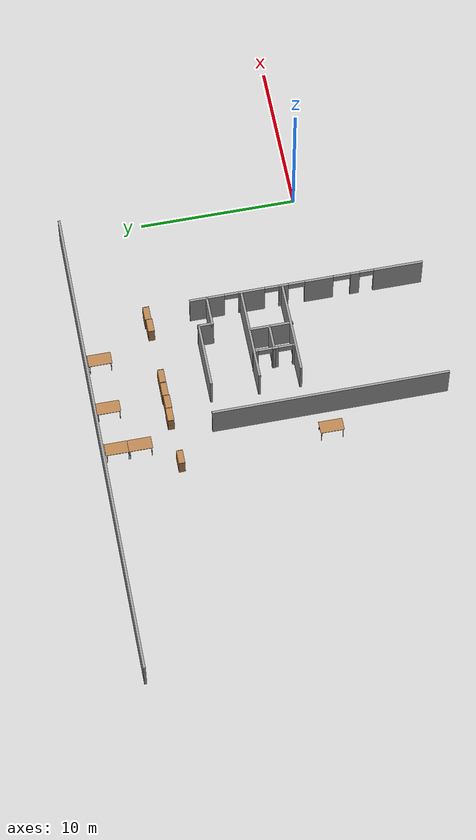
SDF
<sdf version="1.4">
 <world name="default">
  <model name="ground_plane">
   <static>1</static>
   <link name="link">
    <collision name="collision">
     <geometry><plane><normal>0 0 1</normal><size>100 100</size></plane></geometry>
    </collision>
    <visual name="visual">
     <cast_shadows>0</cast_shadows>
     <geometry><plane><normal>0 0 1</normal><size>100 100</size></plane></geometry>
     <material>
      <script><uri>file://media/materials/scripts/gazebo.material</uri><name>Gazebo/Grey</name></script>
     </material>
    </visual>
    <velocity_decay><linear>0</linear><angular>0</angular></velocity_decay>
   </link>
  </model>
  <model name="Shannon">
   <pose>-0.0406 0.68299 0 0 -0 0</pose>
   <link name="Wall_118">
    <collision name="Wall_118_Collision">
     <geometry><box><size>31.25 0.15 2.5</size></box></geometry>
     <pose>0 0 1.25 0 -0 0</pose>
    </collision>
    <visual name="Wall_118_Visual">
     <pose>0 0 1.25 0 -0 0</pose>
     <geometry><box><size>31.25 0.15 2.5</size></box></geometry>
     <material>
      <script><uri>file://media/materials/scripts/gazebo.material</uri><name>Gazebo/Grey</name></script>
      <ambient>1 1 1 1</ambient>
     </material>
    </visual>
    <pose>-15.6004 14.61 0 0 -0 0</pose>
    <velocity_decay><linear>0</linear><angular>0</angular></velocity_decay>
   </link>
   <link name="Wall_17">
    <collision name="Wall_17_Collision">
     <geometry><box><size>15 0.15 2.5</size></box></geometry>
     <pose>0 0 1.25 0 -0 0</pose>
    </collision>
    <visual name="Wall_17_Visual">
     <pose>0 0 1.25 0 -0 0</pose>
     <geometry><box><size>15 0.15 2.5</size></box></geometry>
     <material>
      <script><uri>file://media/materials/scripts/gazebo.material</uri><name>Gazebo/Grey</name></script>
      <ambient>1 1 1 1</ambient>
     </material>
    </visual>
    <pose>-15.3403 0.07086 0 0 -0 -1.569</pose>
    <velocity_decay><linear>0</linear><angular>0</angular></velocity_decay>
   </link>
   <link name="Wall_41">
    <collision name="Wall_41_Collision">
     <geometry><box><size>4.25 0.15 2.5</size></box></geometry>
     <pose>0 0 1.25 0 -0 0</pose>
    </collision>
    <visual name="Wall_41_Visual">
     <pose>0 0 1.25 0 -0 0</pose>
     <geometry><box><size>4.25 0.15 2.5</size></box></geometry>
     <material>
      <script><uri>file://media/materials/scripts/gazebo.material</uri><name>Gazebo/Grey</name></script>
      <ambient>1 1 1 1</ambient>
     </material>
    </visual>
    <pose>-11.2467 7.24934 0 0 -0 0</pose>
    <velocity_decay><linear>0</linear><angular>0</angular></velocity_decay>
   </link>
   <link name="Wall_42">
    <collision name="Wall_42_Collision">
     <geometry><box><size>1 0.15 2.5</size></box></geometry>
     <pose>0 0 1.25 0 -0 0</pose>
    </collision>
    <visual name="Wall_42_Visual">
     <pose>0 0 1.25 0 -0 0</pose>
     <geometry><box><size>1 0.15 2.5</size></box></geometry>
     <material>
      <script><uri>file://media/materials/scripts/gazebo.material</uri><name>Gazebo/Grey</name></script>
      <ambient>1 1 1 1</ambient>
     </material>
    </visual>
    <pose>-9.19666 6.82435 0 0 -0 -1.5708</pose>
    <velocity_decay><linear>0</linear><angular>0</angular></velocity_decay>
   </link>
   <link name="Wall_43">
    <collision name="Wall_43_Collision">
     <geometry><box><size>2 0.15 2.5</size></box></geometry>
     <pose>0 0 1.25 0 -0 0</pose>
    </collision>
    <visual name="Wall_43_Visual">
     <pose>0 0 1.25 0 -0 0</pose>
     <geometry><box><size>2 0.15 2.5</size></box></geometry>
     <material>
      <script><uri>file://media/materials/scripts/gazebo.material</uri><name>Gazebo/Grey</name></script>
      <ambient>1 1 1 1</ambient>
     </material>
    </visual>
    <pose>-8.27166 6.39934 0 0 -0 0</pose>
    <velocity_decay><linear>0</linear><angular>0</angular></velocity_decay>
   </link>
   <link name="Wall_47">
    <pose>-7.32897 0.009389 0 0 -0 -1.5708</pose>
    <visual name="Wall_47_Visual_0">
     <pose>-6.3818 0 1.25 0 -0 0</pose>
     <geometry><box><size>2.2364 0.15 2.5</size></box></geometry>
     <material>
      <script><uri>file://media/materials/scripts/gazebo.material</uri><name>Gazebo/Grey</name></script>
      <ambient>1 1 1 1</ambient>
     </material>
    </visual>
    <collision name="Wall_47_Collision_0">
     <geometry><box><size>2.2364 0.15 2.5</size></box></geometry>
     <pose>-6.3818 0 1.25 0 -0 0</pose>
    </collision>
    <visual name="Wall_47_Visual_1">
     <pose>-3.51711 0 1.25 0 -0 0</pose>
     <geometry><box><size>1.69298 0.15 2.5</size></box></geometry>
     <material>
      <script><uri>file://media/materials/scripts/gazebo.material</uri><name>Gazebo/Grey</name></script>
      <ambient>1 1 1 1</ambient>
     </material>
    </visual>
    <collision name="Wall_47_Collision_1">
     <geometry><box><size>1.69298 0.15 2.5</size></box></geometry>
     <pose>-3.51711 0 1.25 0 -0 0</pose>
    </collision>
    <visual name="Wall_47_Visual_2">
     <pose>-1.46309 0 1.25 0 -0 0</pose>
     <geometry><box><size>0.615055 0.15 2.5</size></box></geometry>
     <material>
      <script><uri>file://media/materials/scripts/gazebo.material</uri><name>Gazebo/Grey</name></script>
      <ambient>1 1 1 1</ambient>
     </material>
    </visual>
    <collision name="Wall_47_Collision_2">
     <geometry><box><size>0.615055 0.15 2.5</size></box></geometry>
     <pose>-1.46309 0 1.25 0 -0 0</pose>
    </collision>
    <visual name="Wall_47_Visual_3">
     <pose>0.809496 0 1.25 0 -0 0</pose>
     <geometry><box><size>1.85254 0.15 2.5</size></box></geometry>
     <material>
      <script><uri>file://media/materials/scripts/gazebo.material</uri><name>Gazebo/Grey</name></script>
      <ambient>1 1 1 1</ambient>
     </material>
    </visual>
    <collision name="Wall_47_Collision_3">
     <geometry><box><size>1.85254 0.15 2.5</size></box></geometry>
     <pose>0.809496 0 1.25 0 -0 0</pose>
    </collision>
    <visual name="Wall_47_Visual_4">
     <pose>3.13991 0 1.25 0 -0 0</pose>
     <geometry><box><size>0.591924 0.15 2.5</size></box></geometry>
     <material>
      <script><uri>file://media/materials/scripts/gazebo.material</uri><name>Gazebo/Grey</name></script>
      <ambient>1 1 1 1</ambient>
     </material>
    </visual>
    <collision name="Wall_47_Collision_4">
     <geometry><box><size>0.591924 0.15 2.5</size></box></geometry>
     <pose>3.13991 0 1.25 0 -0 0</pose>
    </collision>
    <visual name="Wall_47_Visual_5">
     <pose>5.91793 0 1.25 0 -0 0</pose>
     <geometry><box><size>3.16413 0.15 2.5</size></box></geometry>
     <material>
      <script><uri>file://media/materials/scripts/gazebo.material</uri><name>Gazebo/Grey</name></script>
      <ambient>1 1 1 1</ambient>
     </material>
    </visual>
    <collision name="Wall_47_Collision_5">
     <geometry><box><size>3.16413 0.15 2.5</size></box></geometry>
     <pose>5.91793 0 1.25 0 -0 0</pose>
    </collision>
    <visual name="Wall_47_Visual_6">
     <pose>-4.8136 0 2.25 0 -0 0</pose>
     <geometry><box><size>0.9 0.15 0.5</size></box></geometry>
     <material>
      <script><uri>file://media/materials/scripts/gazebo.material</uri><name>Gazebo/Grey</name></script>
      <ambient>1 1 1 1</ambient>
     </material>
    </visual>
    <collision name="Wall_47_Collision_6">
     <geometry><box><size>0.9 0.15 0.5</size></box></geometry>
     <pose>-4.8136 0 2.25 0 -0 0</pose>
    </collision>
    <visual name="Wall_47_Visual_7">
     <pose>-2.22061 0 2.25 0 -0 0</pose>
     <geometry><box><size>0.9 0.15 0.5</size></box></geometry>
     <material>
      <script><uri>file://media/materials/scripts/gazebo.material</uri><name>Gazebo/Grey</name></script>
      <ambient>1 1 1 1</ambient>
     </material>
    </visual>
    <collision name="Wall_47_Collision_7">
     <geometry><box><size>0.9 0.15 0.5</size></box></geometry>
     <pose>-2.22061 0 2.25 0 -0 0</pose>
    </collision>
    <visual name="Wall_47_Visual_8">
     <pose>-0.636167 0 2.25 0 -0 0</pose>
     <geometry><box><size>1.03878 0.15 0.5</size></box></geometry>
     <material>
      <script><uri>file://media/materials/scripts/gazebo.material</uri><name>Gazebo/Grey</name></script>
      <ambient>1 1 1 1</ambient>
     </material>
    </visual>
    <collision name="Wall_47_Collision_8">
     <geometry><box><size>1.03878 0.15 0.5</size></box></geometry>
     <pose>-0.636167 0 2.25 0 -0 0</pose>
    </collision>
    <visual name="Wall_47_Visual_9">
     <pose>2.28986 0 2.25 0 -0 0</pose>
     <geometry><box><size>1.10817 0.15 0.5</size></box></geometry>
     <material>
      <script><uri>file://media/materials/scripts/gazebo.material</uri><name>Gazebo/Grey</name></script>
      <ambient>1 1 1 1</ambient>
     </material>
    </visual>
    <collision name="Wall_47_Collision_9">
     <geometry><box><size>1.10817 0.15 0.5</size></box></geometry>
     <pose>2.28986 0 2.25 0 -0 0</pose>
    </collision>
    <visual name="Wall_47_Visual_10">
     <pose>3.88587 0 2.25 0 -0 0</pose>
     <geometry><box><size>0.9 0.15 0.5</size></box></geometry>
     <material>
      <script><uri>file://media/materials/scripts/gazebo.material</uri><name>Gazebo/Grey</name></script>
      <ambient>1 1 1 1</ambient>
     </material>
    </visual>
    <collision name="Wall_47_Collision_10">
     <geometry><box><size>0.9 0.15 0.5</size></box></geometry>
     <pose>3.88587 0 2.25 0 -0 0</pose>
    </collision>
    <velocity_decay><linear>0</linear><angular>0</angular></velocity_decay>
   </link>
   <link name="Wall_49">
    <collision name="Wall_49_Collision">
     <geometry><box><size>6 0.15 2.5</size></box></geometry>
     <pose>0 0 1.25 0 -0 0</pose>
    </collision>
    <visual name="Wall_49_Visual">
     <pose>0 0 1.25 0 -0 0</pose>
     <geometry><box><size>6 0.15 2.5</size></box></geometry>
     <material>
      <script><uri>file://media/materials/scripts/gazebo.material</uri><name>Gazebo/Grey</name></script>
      <ambient>1 1 1 1</ambient>
     </material>
    </visual>
    <pose>-10.3948 4.1961 0 0 -0 0</pose>
    <velocity_decay><linear>0</linear><angular>0</angular></velocity_decay>
   </link>
   <link name="Wall_51">
    <collision name="Wall_51_Collision">
     <geometry><box><size>6 0.15 2.5</size></box></geometry>
     <pose>0 0 1.25 0 -0 0</pose>
    </collision>
    <visual name="Wall_51_Visual">
     <pose>0 0 1.25 0 -0 0</pose>
     <geometry><box><size>6 0.15 2.5</size></box></geometry>
     <material>
      <script><uri>file://media/materials/scripts/gazebo.material</uri><name>Gazebo/Grey</name></script>
      <ambient>1 1 1 1</ambient>
     </material>
    </visual>
    <pose>-10.3717 1.55922 0 0 -0 0</pose>
    <velocity_decay><linear>0</linear><angular>0</angular></velocity_decay>
   </link>
   <link name="Wall_67">
    <pose>-11.6313 2.91924 0 0 -0 -1.5708</pose>
    <visual name="Wall_67_Visual_0">
     <pose>-1.20398 0 1.25 0 -0 0</pose>
     <geometry><box><size>0.342049 0.15 2.5</size></box></geometry>
     <material>
      <script><uri>file://media/materials/scripts/gazebo.material</uri><name>Gazebo/Grey</name></script>
      <ambient>1 1 1 1</ambient>
     </material>
    </visual>
    <collision name="Wall_67_Collision_0">
     <geometry><box><size>0.342049 0.15 2.5</size></box></geometry>
     <pose>-1.20398 0 1.25 0 -0 0</pose>
    </collision>
    <visual name="Wall_67_Visual_1">
     <pose>0.064706 0 1.25 0 -0 0</pose>
     <geometry><box><size>0.395314 0.15 2.5</size></box></geometry>
     <material>
      <script><uri>file://media/materials/scripts/gazebo.material</uri><name>Gazebo/Grey</name></script>
      <ambient>1 1 1 1</ambient>
     </material>
    </visual>
    <collision name="Wall_67_Collision_1">
     <geometry><box><size>0.395314 0.15 2.5</size></box></geometry>
     <pose>0.064706 0 1.25 0 -0 0</pose>
    </collision>
    <visual name="Wall_67_Visual_2">
     <pose>1.26868 0 1.25 0 -0 0</pose>
     <geometry><box><size>0.212637 0.15 2.5</size></box></geometry>
     <material>
      <script><uri>file://media/materials/scripts/gazebo.material</uri><name>Gazebo/Grey</name></script>
      <ambient>1 1 1 1</ambient>
     </material>
    </visual>
    <collision name="Wall_67_Collision_2">
     <geometry><box><size>0.212637 0.15 2.5</size></box></geometry>
     <pose>1.26868 0 1.25 0 -0 0</pose>
    </collision>
    <visual name="Wall_67_Visual_3">
     <pose>-0.582951 0 2.25 0 -0 0</pose>
     <geometry><box><size>0.9 0.15 0.5</size></box></geometry>
     <material>
      <script><uri>file://media/materials/scripts/gazebo.material</uri><name>Gazebo/Grey</name></script>
      <ambient>1 1 1 1</ambient>
     </material>
    </visual>
    <collision name="Wall_67_Collision_3">
     <geometry><box><size>0.9 0.15 0.5</size></box></geometry>
     <pose>-0.582951 0 2.25 0 -0 0</pose>
    </collision>
    <visual name="Wall_67_Visual_4">
     <pose>0.712363 0 2.25 0 -0 0</pose>
     <geometry><box><size>0.9 0.15 0.5</size></box></geometry>
     <material>
      <script><uri>file://media/materials/scripts/gazebo.material</uri><name>Gazebo/Grey</name></script>
      <ambient>1 1 1 1</ambient>
     </material>
    </visual>
    <collision name="Wall_67_Collision_4">
     <geometry><box><size>0.9 0.15 0.5</size></box></geometry>
     <pose>0.712363 0 2.25 0 -0 0</pose>
    </collision>
    <velocity_decay><linear>0</linear><angular>0</angular></velocity_decay>
   </link>
   <link name="Wall_69">
    <collision name="Wall_69_Collision">
     <geometry><box><size>1.75 0.15 2.5</size></box></geometry>
     <pose>0 0 1.25 0 -0 0</pose>
    </collision>
    <visual name="Wall_69_Visual">
     <pose>0 0 1.25 0 -0 0</pose>
     <geometry><box><size>1.75 0.15 2.5</size></box></geometry>
     <material>
      <script><uri>file://media/materials/scripts/gazebo.material</uri><name>Gazebo/Grey</name></script>
      <ambient>1 1 1 1</ambient>
     </material>
    </visual>
    <pose>-10.8544 2.92392 0 0 -0 0</pose>
    <velocity_decay><linear>0</linear><angular>0</angular></velocity_decay>
   </link>
   <link name="Wall_71">
    <collision name="Wall_71_Collision">
     <geometry><box><size>2.75 0.15 2.5</size></box></geometry>
     <pose>0 0 1.25 0 -0 0</pose>
    </collision>
    <visual name="Wall_71_Visual">
     <pose>0 0 1.25 0 -0 0</pose>
     <geometry><box><size>2.75 0.15 2.5</size></box></geometry>
     <material>
      <script><uri>file://media/materials/scripts/gazebo.material</uri><name>Gazebo/Grey</name></script>
      <ambient>1 1 1 1</ambient>
     </material>
    </visual>
    <pose>-10.0584 2.80358 0 0 -0 -1.5708</pose>
    <velocity_decay><linear>0</linear><angular>0</angular></velocity_decay>
   </link>
   <static>1</static>
  </model>
  <model name="table_clone_clone_3">
   <static>1</static>
   <link name="link">
    <collision name="surface">
     <pose>0 0 1 0 -0 0</pose>
     <geometry><box><size>1.5 0.8 0.03</size></box></geometry>
    </collision>
    <visual name="visual1">
     <pose>0 0 1 0 -0 0</pose>
     <geometry><box><size>1.5 0.8 0.03</size></box></geometry>
     <material>
      <script><uri>file://media/materials/scripts/gazebo.material</uri><name>Gazebo/Wood</name></script>
     </material>
    </visual>
    <collision name="front_left_leg">
     <pose>0.68 0.38 0.5 0 -0 0</pose>
     <geometry><cylinder><radius>0.02</radius><length>1</length></cylinder></geometry>
    </collision>
    <visual name="front_left_leg">
     <pose>0.68 0.38 0.5 0 -0 0</pose>
     <geometry><cylinder><radius>0.02</radius><length>1</length></cylinder></geometry>
     <material>
      <script><uri>file://media/materials/scripts/gazebo.material</uri><name>Gazebo/Grey</name></script>
     </material>
    </visual>
    <collision name="front_right_leg">
     <pose>0.68 -0.38 0.5 0 -0 0</pose>
     <geometry><cylinder><radius>0.02</radius><length>1</length></cylinder></geometry>
    </collision>
    <visual name="front_right_leg">
     <pose>0.68 -0.38 0.5 0 -0 0</pose>
     <geometry><cylinder><radius>0.02</radius><length>1</length></cylinder></geometry>
     <material>
      <script><uri>file://media/materials/scripts/gazebo.material</uri><name>Gazebo/Grey</name></script>
     </material>
    </visual>
    <collision name="back_right_leg">
     <pose>-0.68 -0.38 0.5 0 -0 0</pose>
     <geometry><cylinder><radius>0.02</radius><length>1</length></cylinder></geometry>
    </collision>
    <visual name="back_right_leg">
     <pose>-0.68 -0.38 0.5 0 -0 0</pose>
     <geometry><cylinder><radius>0.02</radius><length>1</length></cylinder></geometry>
     <material>
      <script><uri>file://media/materials/scripts/gazebo.material</uri><name>Gazebo/Grey</name></script>
     </material>
    </visual>
    <collision name="back_left_leg">
     <pose>-0.68 0.38 0.5 0 -0 0</pose>
     <geometry><cylinder><radius>0.02</radius><length>1</length></cylinder></geometry>
    </collision>
    <visual name="back_left_leg">
     <pose>-0.68 0.38 0.5 0 -0 0</pose>
     <geometry><cylinder><radius>0.02</radius><length>1</length></cylinder></geometry>
     <material>
      <script><uri>file://media/materials/scripts/gazebo.material</uri><name>Gazebo/Grey</name></script>
     </material>
    </visual>
    <velocity_decay><linear>0</linear><angular>0</angular></velocity_decay>
   </link>
   <pose>-9.61769 14.3695 0 0 -0 1.57</pose>
  </model>
  <model name="table_clone_clone_5">
   <static>1</static>
   <link name="link">
    <collision name="surface">
     <pose>0 0 1 0 -0 0</pose>
     <geometry><box><size>1.5 0.8 0.03</size></box></geometry>
    </collision>
    <visual name="visual1">
     <pose>0 0 1 0 -0 0</pose>
     <geometry><box><size>1.5 0.8 0.03</size></box></geometry>
     <material>
      <script><uri>file://media/materials/scripts/gazebo.material</uri><name>Gazebo/Wood</name></script>
     </material>
    </visual>
    <collision name="front_left_leg">
     <pose>0.68 0.38 0.5 0 -0 0</pose>
     <geometry><cylinder><radius>0.02</radius><length>1</length></cylinder></geometry>
    </collision>
    <visual name="front_left_leg">
     <pose>0.68 0.38 0.5 0 -0 0</pose>
     <geometry><cylinder><radius>0.02</radius><length>1</length></cylinder></geometry>
     <material>
      <script><uri>file://media/materials/scripts/gazebo.material</uri><name>Gazebo/Grey</name></script>
     </material>
    </visual>
    <collision name="front_right_leg">
     <pose>0.68 -0.38 0.5 0 -0 0</pose>
     <geometry><cylinder><radius>0.02</radius><length>1</length></cylinder></geometry>
    </collision>
    <visual name="front_right_leg">
     <pose>0.68 -0.38 0.5 0 -0 0</pose>
     <geometry><cylinder><radius>0.02</radius><length>1</length></cylinder></geometry>
     <material>
      <script><uri>file://media/materials/scripts/gazebo.material</uri><name>Gazebo/Grey</name></script>
     </material>
    </visual>
    <collision name="back_right_leg">
     <pose>-0.68 -0.38 0.5 0 -0 0</pose>
     <geometry><cylinder><radius>0.02</radius><length>1</length></cylinder></geometry>
    </collision>
    <visual name="back_right_leg">
     <pose>-0.68 -0.38 0.5 0 -0 0</pose>
     <geometry><cylinder><radius>0.02</radius><length>1</length></cylinder></geometry>
     <material>
      <script><uri>file://media/materials/scripts/gazebo.material</uri><name>Gazebo/Grey</name></script>
     </material>
    </visual>
    <collision name="back_left_leg">
     <pose>-0.68 0.38 0.5 0 -0 0</pose>
     <geometry><cylinder><radius>0.02</radius><length>1</length></cylinder></geometry>
    </collision>
    <visual name="back_left_leg">
     <pose>-0.68 0.38 0.5 0 -0 0</pose>
     <geometry><cylinder><radius>0.02</radius><length>1</length></cylinder></geometry>
     <material>
      <script><uri>file://media/materials/scripts/gazebo.material</uri><name>Gazebo/Grey</name></script>
     </material>
    </visual>
    <velocity_decay><linear>0</linear><angular>0</angular></velocity_decay>
   </link>
   <pose>-13.0647 14.4109 0 0 -0 1.57</pose>
  </model>
  <model name="table_clone_clone_7">
   <static>1</static>
   <link name="link">
    <collision name="surface">
     <pose>0 0 1 0 -0 0</pose>
     <geometry><box><size>1.5 0.8 0.03</size></box></geometry>
    </collision>
    <visual name="visual1">
     <pose>0 0 1 0 -0 0</pose>
     <geometry><box><size>1.5 0.8 0.03</size></box></geometry>
     <material>
      <script><uri>file://media/materials/scripts/gazebo.material</uri><name>Gazebo/Wood</name></script>
     </material>
    </visual>
    <collision name="front_left_leg">
     <pose>0.68 0.38 0.5 0 -0 0</pose>
     <geometry><cylinder><radius>0.02</radius><length>1</length></cylinder></geometry>
    </collision>
    <visual name="front_left_leg">
     <pose>0.68 0.38 0.5 0 -0 0</pose>
     <geometry><cylinder><radius>0.02</radius><length>1</length></cylinder></geometry>
     <material>
      <script><uri>file://media/materials/scripts/gazebo.material</uri><name>Gazebo/Grey</name></script>
     </material>
    </visual>
    <collision name="front_right_leg">
     <pose>0.68 -0.38 0.5 0 -0 0</pose>
     <geometry><cylinder><radius>0.02</radius><length>1</length></cylinder></geometry>
    </collision>
    <visual name="front_right_leg">
     <pose>0.68 -0.38 0.5 0 -0 0</pose>
     <geometry><cylinder><radius>0.02</radius><length>1</length></cylinder></geometry>
     <material>
      <script><uri>file://media/materials/scripts/gazebo.material</uri><name>Gazebo/Grey</name></script>
     </material>
    </visual>
    <collision name="back_right_leg">
     <pose>-0.68 -0.38 0.5 0 -0 0</pose>
     <geometry><cylinder><radius>0.02</radius><length>1</length></cylinder></geometry>
    </collision>
    <visual name="back_right_leg">
     <pose>-0.68 -0.38 0.5 0 -0 0</pose>
     <geometry><cylinder><radius>0.02</radius><length>1</length></cylinder></geometry>
     <material>
      <script><uri>file://media/materials/scripts/gazebo.material</uri><name>Gazebo/Grey</name></script>
     </material>
    </visual>
    <collision name="back_left_leg">
     <pose>-0.68 0.38 0.5 0 -0 0</pose>
     <geometry><cylinder><radius>0.02</radius><length>1</length></cylinder></geometry>
    </collision>
    <visual name="back_left_leg">
     <pose>-0.68 0.38 0.5 0 -0 0</pose>
     <geometry><cylinder><radius>0.02</radius><length>1</length></cylinder></geometry>
     <material>
      <script><uri>file://media/materials/scripts/gazebo.material</uri><name>Gazebo/Grey</name></script>
     </material>
    </visual>
    <velocity_decay><linear>0</linear><angular>0</angular></velocity_decay>
   </link>
   <pose>-15.9528 12.9118 0 0 -0 1.57</pose>
  </model>
  <model name="table_clone_clone_8">
   <static>1</static>
   <link name="link">
    <collision name="surface">
     <pose>0 0 1 0 -0 0</pose>
     <geometry><box><size>1.5 0.8 0.03</size></box></geometry>
    </collision>
    <visual name="visual1">
     <pose>0 0 1 0 -0 0</pose>
     <geometry><box><size>1.5 0.8 0.03</size></box></geometry>
     <material>
      <script><uri>file://media/materials/scripts/gazebo.material</uri><name>Gazebo/Wood</name></script>
     </material>
    </visual>
    <collision name="front_left_leg">
     <pose>0.68 0.38 0.5 0 -0 0</pose>
     <geometry><cylinder><radius>0.02</radius><length>1</length></cylinder></geometry>
    </collision>
    <visual name="front_left_leg">
     <pose>0.68 0.38 0.5 0 -0 0</pose>
     <geometry><cylinder><radius>0.02</radius><length>1</length></cylinder></geometry>
     <material>
      <script><uri>file://media/materials/scripts/gazebo.material</uri><name>Gazebo/Grey</name></script>
     </material>
    </visual>
    <collision name="front_right_leg">
     <pose>0.68 -0.38 0.5 0 -0 0</pose>
     <geometry><cylinder><radius>0.02</radius><length>1</length></cylinder></geometry>
    </collision>
    <visual name="front_right_leg">
     <pose>0.68 -0.38 0.5 0 -0 0</pose>
     <geometry><cylinder><radius>0.02</radius><length>1</length></cylinder></geometry>
     <material>
      <script><uri>file://media/materials/scripts/gazebo.material</uri><name>Gazebo/Grey</name></script>
     </material>
    </visual>
    <collision name="back_right_leg">
     <pose>-0.68 -0.38 0.5 0 -0 0</pose>
     <geometry><cylinder><radius>0.02</radius><length>1</length></cylinder></geometry>
    </collision>
    <visual name="back_right_leg">
     <pose>-0.68 -0.38 0.5 0 -0 0</pose>
     <geometry><cylinder><radius>0.02</radius><length>1</length></cylinder></geometry>
     <material>
      <script><uri>file://media/materials/scripts/gazebo.material</uri><name>Gazebo/Grey</name></script>
     </material>
    </visual>
    <collision name="back_left_leg">
     <pose>-0.68 0.38 0.5 0 -0 0</pose>
     <geometry><cylinder><radius>0.02</radius><length>1</length></cylinder></geometry>
    </collision>
    <visual name="back_left_leg">
     <pose>-0.68 0.38 0.5 0 -0 0</pose>
     <geometry><cylinder><radius>0.02</radius><length>1</length></cylinder></geometry>
     <material>
      <script><uri>file://media/materials/scripts/gazebo.material</uri><name>Gazebo/Grey</name></script>
     </material>
    </visual>
    <velocity_decay><linear>0</linear><angular>0</angular></velocity_decay>
   </link>
   <pose>-15.9532 14.3573 0 0 -0 1.57</pose>
  </model>
  <model name="table_clone_clone_2_clone">
   <static>1</static>
   <link name="link">
    <collision name="surface">
     <pose>0 0 1 0 -0 0</pose>
     <geometry><box><size>1.5 0.8 0.03</size></box></geometry>
    </collision>
    <visual name="visual1">
     <pose>0 0 1 0 -0 0</pose>
     <geometry><box><size>1.5 0.8 0.03</size></box></geometry>
     <material>
      <script><uri>file://media/materials/scripts/gazebo.material</uri><name>Gazebo/Wood</name></script>
     </material>
    </visual>
    <collision name="front_left_leg">
     <pose>0.68 0.38 0.5 0 -0 0</pose>
     <geometry><cylinder><radius>0.02</radius><length>1</length></cylinder></geometry>
    </collision>
    <visual name="front_left_leg">
     <pose>0.68 0.38 0.5 0 -0 0</pose>
     <geometry><cylinder><radius>0.02</radius><length>1</length></cylinder></geometry>
     <material>
      <script><uri>file://media/materials/scripts/gazebo.material</uri><name>Gazebo/Grey</name></script>
     </material>
    </visual>
    <collision name="front_right_leg">
     <pose>0.68 -0.38 0.5 0 -0 0</pose>
     <geometry><cylinder><radius>0.02</radius><length>1</length></cylinder></geometry>
    </collision>
    <visual name="front_right_leg">
     <pose>0.68 -0.38 0.5 0 -0 0</pose>
     <geometry><cylinder><radius>0.02</radius><length>1</length></cylinder></geometry>
     <material>
      <script><uri>file://media/materials/scripts/gazebo.material</uri><name>Gazebo/Grey</name></script>
     </material>
    </visual>
    <collision name="back_right_leg">
     <pose>-0.68 -0.38 0.5 0 -0 0</pose>
     <geometry><cylinder><radius>0.02</radius><length>1</length></cylinder></geometry>
    </collision>
    <visual name="back_right_leg">
     <pose>-0.68 -0.38 0.5 0 -0 0</pose>
     <geometry><cylinder><radius>0.02</radius><length>1</length></cylinder></geometry>
     <material>
      <script><uri>file://media/materials/scripts/gazebo.material</uri><name>Gazebo/Grey</name></script>
     </material>
    </visual>
    <collision name="back_left_leg">
     <pose>-0.68 0.38 0.5 0 -0 0</pose>
     <geometry><cylinder><radius>0.02</radius><length>1</length></cylinder></geometry>
    </collision>
    <visual name="back_left_leg">
     <pose>-0.68 0.38 0.5 0 -0 0</pose>
     <geometry><cylinder><radius>0.02</radius><length>1</length></cylinder></geometry>
     <material>
      <script><uri>file://media/materials/scripts/gazebo.material</uri><name>Gazebo/Grey</name></script>
     </material>
    </visual>
    <velocity_decay><linear>0</linear><angular>0</angular></velocity_decay>
   </link>
   <pose>-16.9544 1.03721 0 0 -0 1.57</pose>
  </model>
  <model name="bookshelf_2">
   <static>1</static>
   <link name="link">
    <inertial><mass>1</mass></inertial>
    <collision name="back">
     <pose>0 0.005 0.6 0 -0 0</pose>
     <geometry><box><size>0.9 0.01 1.2</size></box></geometry>
    </collision>
    <visual name="visual1">
     <pose>0 0.005 0.6 0 -0 0</pose>
     <geometry><box><size>0.9 0.01 1.2</size></box></geometry>
     <material>
      <script><uri>file://media/materials/scripts/gazebo.material</uri><name>Gazebo/Wood</name></script>
     </material>
    </visual>
    <collision name="left_side">
     <pose>0.45 -0.195 0.6 0 -0 0</pose>
     <geometry><box><size>0.02 0.4 1.2</size></box></geometry>
    </collision>
    <visual name="visual2">
     <pose>0.45 -0.195 0.6 0 -0 0</pose>
     <geometry><box><size>0.02 0.4 1.2</size></box></geometry>
     <material>
      <script><uri>file://media/materials/scripts/gazebo.material</uri><name>Gazebo/Wood</name></script>
     </material>
    </visual>
    <collision name="right_side">
     <pose>-0.45 -0.195 0.6 0 -0 0</pose>
     <geometry><box><size>0.02 0.4 1.2</size></box></geometry>
    </collision>
    <visual name="visual3">
     <pose>-0.45 -0.195 0.6 0 -0 0</pose>
     <geometry><box><size>0.02 0.4 1.2</size></box></geometry>
     <material>
      <script><uri>file://media/materials/scripts/gazebo.material</uri><name>Gazebo/Wood</name></script>
     </material>
    </visual>
    <collision name="bottom">
     <pose>0 -0.195 0.03 0 -0 0</pose>
     <geometry><box><size>0.88 0.4 0.06</size></box></geometry>
    </collision>
    <visual name="visual4">
     <pose>0 -0.195 0.03 0 -0 0</pose>
     <geometry><box><size>0.88 0.4 0.06</size></box></geometry>
     <material>
      <script><uri>file://media/materials/scripts/gazebo.material</uri><name>Gazebo/Wood</name></script>
     </material>
    </visual>
    <collision name="top">
     <pose>0 -0.195 1.19 0 -0 0</pose>
     <geometry><box><size>0.88 0.4 0.02</size></box></geometry>
    </collision>
    <visual name="visual5">
     <pose>0 -0.195 1.19 0 -0 0</pose>
     <geometry><box><size>0.88 0.4 0.02</size></box></geometry>
     <material>
      <script><uri>file://media/materials/scripts/gazebo.material</uri><name>Gazebo/Wood</name></script>
     </material>
    </visual>
    <collision name="low_shelf">
     <pose>0 -0.195 0.43 0 -0 0</pose>
     <geometry><box><size>0.88 0.4 0.02</size></box></geometry>
    </collision>
    <visual name="visual6">
     <pose>0 -0.195 0.43 0 -0 0</pose>
     <geometry><box><size>0.88 0.4 0.02</size></box></geometry>
     <material>
      <script><uri>file://media/materials/scripts/gazebo.material</uri><name>Gazebo/Wood</name></script>
     </material>
    </visual>
    <collision name="high_shelf">
     <pose>0 -0.195 0.8 0 -0 0</pose>
     <geometry><box><size>0.88 0.4 0.02</size></box></geometry>
    </collision>
    <visual name="visual7">
     <pose>0 -0.195 0.8 0 -0 0</pose>
     <geometry><box><size>0.88 0.4 0.02</size></box></geometry>
     <material>
      <script><uri>file://media/materials/scripts/gazebo.material</uri><name>Gazebo/Wood</name></script>
     </material>
    </visual>
    <velocity_decay><linear>0</linear><angular>0</angular></velocity_decay>
   </link>
   <pose>-17.3752 10.8036 0 0 -0 0</pose>
  </model>
  <model name="bookshelf_3">
   <static>1</static>
   <link name="link">
    <inertial><mass>1</mass></inertial>
    <collision name="back">
     <pose>0 0.005 0.6 0 -0 0</pose>
     <geometry><box><size>0.9 0.01 1.2</size></box></geometry>
    </collision>
    <visual name="visual1">
     <pose>0 0.005 0.6 0 -0 0</pose>
     <geometry><box><size>0.9 0.01 1.2</size></box></geometry>
     <material>
      <script><uri>file://media/materials/scripts/gazebo.material</uri><name>Gazebo/Wood</name></script>
     </material>
    </visual>
    <collision name="left_side">
     <pose>0.45 -0.195 0.6 0 -0 0</pose>
     <geometry><box><size>0.02 0.4 1.2</size></box></geometry>
    </collision>
    <visual name="visual2">
     <pose>0.45 -0.195 0.6 0 -0 0</pose>
     <geometry><box><size>0.02 0.4 1.2</size></box></geometry>
     <material>
      <script><uri>file://media/materials/scripts/gazebo.material</uri><name>Gazebo/Wood</name></script>
     </material>
    </visual>
    <collision name="right_side">
     <pose>-0.45 -0.195 0.6 0 -0 0</pose>
     <geometry><box><size>0.02 0.4 1.2</size></box></geometry>
    </collision>
    <visual name="visual3">
     <pose>-0.45 -0.195 0.6 0 -0 0</pose>
     <geometry><box><size>0.02 0.4 1.2</size></box></geometry>
     <material>
      <script><uri>file://media/materials/scripts/gazebo.material</uri><name>Gazebo/Wood</name></script>
     </material>
    </visual>
    <collision name="bottom">
     <pose>0 -0.195 0.03 0 -0 0</pose>
     <geometry><box><size>0.88 0.4 0.06</size></box></geometry>
    </collision>
    <visual name="visual4">
     <pose>0 -0.195 0.03 0 -0 0</pose>
     <geometry><box><size>0.88 0.4 0.06</size></box></geometry>
     <material>
      <script><uri>file://media/materials/scripts/gazebo.material</uri><name>Gazebo/Wood</name></script>
     </material>
    </visual>
    <collision name="top">
     <pose>0 -0.195 1.19 0 -0 0</pose>
     <geometry><box><size>0.88 0.4 0.02</size></box></geometry>
    </collision>
    <visual name="visual5">
     <pose>0 -0.195 1.19 0 -0 0</pose>
     <geometry><box><size>0.88 0.4 0.02</size></box></geometry>
     <material>
      <script><uri>file://media/materials/scripts/gazebo.material</uri><name>Gazebo/Wood</name></script>
     </material>
    </visual>
    <collision name="low_shelf">
     <pose>0 -0.195 0.43 0 -0 0</pose>
     <geometry><box><size>0.88 0.4 0.02</size></box></geometry>
    </collision>
    <visual name="visual6">
     <pose>0 -0.195 0.43 0 -0 0</pose>
     <geometry><box><size>0.88 0.4 0.02</size></box></geometry>
     <material>
      <script><uri>file://media/materials/scripts/gazebo.material</uri><name>Gazebo/Wood</name></script>
     </material>
    </visual>
    <collision name="high_shelf">
     <pose>0 -0.195 0.8 0 -0 0</pose>
     <geometry><box><size>0.88 0.4 0.02</size></box></geometry>
    </collision>
    <visual name="visual7">
     <pose>0 -0.195 0.8 0 -0 0</pose>
     <geometry><box><size>0.88 0.4 0.02</size></box></geometry>
     <material>
      <script><uri>file://media/materials/scripts/gazebo.material</uri><name>Gazebo/Wood</name></script>
     </material>
    </visual>
    <velocity_decay><linear>0</linear><angular>0</angular></velocity_decay>
   </link>
   <pose>-14.3513 10.9343 0 0 -0 0</pose>
  </model>
  <model name="bookshelf_4">
   <static>1</static>
   <link name="link">
    <inertial><mass>1</mass></inertial>
    <collision name="back">
     <pose>0 0.005 0.6 0 -0 0</pose>
     <geometry><box><size>0.9 0.01 1.2</size></box></geometry>
    </collision>
    <visual name="visual1">
     <pose>0 0.005 0.6 0 -0 0</pose>
     <geometry><box><size>0.9 0.01 1.2</size></box></geometry>
     <material>
      <script><uri>file://media/materials/scripts/gazebo.material</uri><name>Gazebo/Wood</name></script>
     </material>
    </visual>
    <collision name="left_side">
     <pose>0.45 -0.195 0.6 0 -0 0</pose>
     <geometry><box><size>0.02 0.4 1.2</size></box></geometry>
    </collision>
    <visual name="visual2">
     <pose>0.45 -0.195 0.6 0 -0 0</pose>
     <geometry><box><size>0.02 0.4 1.2</size></box></geometry>
     <material>
      <script><uri>file://media/materials/scripts/gazebo.material</uri><name>Gazebo/Wood</name></script>
     </material>
    </visual>
    <collision name="right_side">
     <pose>-0.45 -0.195 0.6 0 -0 0</pose>
     <geometry><box><size>0.02 0.4 1.2</size></box></geometry>
    </collision>
    <visual name="visual3">
     <pose>-0.45 -0.195 0.6 0 -0 0</pose>
     <geometry><box><size>0.02 0.4 1.2</size></box></geometry>
     <material>
      <script><uri>file://media/materials/scripts/gazebo.material</uri><name>Gazebo/Wood</name></script>
     </material>
    </visual>
    <collision name="bottom">
     <pose>0 -0.195 0.03 0 -0 0</pose>
     <geometry><box><size>0.88 0.4 0.06</size></box></geometry>
    </collision>
    <visual name="visual4">
     <pose>0 -0.195 0.03 0 -0 0</pose>
     <geometry><box><size>0.88 0.4 0.06</size></box></geometry>
     <material>
      <script><uri>file://media/materials/scripts/gazebo.material</uri><name>Gazebo/Wood</name></script>
     </material>
    </visual>
    <collision name="top">
     <pose>0 -0.195 1.19 0 -0 0</pose>
     <geometry><box><size>0.88 0.4 0.02</size></box></geometry>
    </collision>
    <visual name="visual5">
     <pose>0 -0.195 1.19 0 -0 0</pose>
     <geometry><box><size>0.88 0.4 0.02</size></box></geometry>
     <material>
      <script><uri>file://media/materials/scripts/gazebo.material</uri><name>Gazebo/Wood</name></script>
     </material>
    </visual>
    <collision name="low_shelf">
     <pose>0 -0.195 0.43 0 -0 0</pose>
     <geometry><box><size>0.88 0.4 0.02</size></box></geometry>
    </collision>
    <visual name="visual6">
     <pose>0 -0.195 0.43 0 -0 0</pose>
     <geometry><box><size>0.88 0.4 0.02</size></box></geometry>
     <material>
      <script><uri>file://media/materials/scripts/gazebo.material</uri><name>Gazebo/Wood</name></script>
     </material>
    </visual>
    <collision name="high_shelf">
     <pose>0 -0.195 0.8 0 -0 0</pose>
     <geometry><box><size>0.88 0.4 0.02</size></box></geometry>
    </collision>
    <visual name="visual7">
     <pose>0 -0.195 0.8 0 -0 0</pose>
     <geometry><box><size>0.88 0.4 0.02</size></box></geometry>
     <material>
      <script><uri>file://media/materials/scripts/gazebo.material</uri><name>Gazebo/Wood</name></script>
     </material>
    </visual>
    <velocity_decay><linear>0</linear><angular>0</angular></velocity_decay>
   </link>
   <pose>-13.4463 10.9104 0 0 -0 0</pose>
  </model>
  <model name="bookshelf_5">
   <static>1</static>
   <link name="link">
    <inertial><mass>1</mass></inertial>
    <collision name="back">
     <pose>0 0.005 0.6 0 -0 0</pose>
     <geometry><box><size>0.9 0.01 1.2</size></box></geometry>
    </collision>
    <visual name="visual1">
     <pose>0 0.005 0.6 0 -0 0</pose>
     <geometry><box><size>0.9 0.01 1.2</size></box></geometry>
     <material>
      <script><uri>file://media/materials/scripts/gazebo.material</uri><name>Gazebo/Wood</name></script>
     </material>
    </visual>
    <collision name="left_side">
     <pose>0.45 -0.195 0.6 0 -0 0</pose>
     <geometry><box><size>0.02 0.4 1.2</size></box></geometry>
    </collision>
    <visual name="visual2">
     <pose>0.45 -0.195 0.6 0 -0 0</pose>
     <geometry><box><size>0.02 0.4 1.2</size></box></geometry>
     <material>
      <script><uri>file://media/materials/scripts/gazebo.material</uri><name>Gazebo/Wood</name></script>
     </material>
    </visual>
    <collision name="right_side">
     <pose>-0.45 -0.195 0.6 0 -0 0</pose>
     <geometry><box><size>0.02 0.4 1.2</size></box></geometry>
    </collision>
    <visual name="visual3">
     <pose>-0.45 -0.195 0.6 0 -0 0</pose>
     <geometry><box><size>0.02 0.4 1.2</size></box></geometry>
     <material>
      <script><uri>file://media/materials/scripts/gazebo.material</uri><name>Gazebo/Wood</name></script>
     </material>
    </visual>
    <collision name="bottom">
     <pose>0 -0.195 0.03 0 -0 0</pose>
     <geometry><box><size>0.88 0.4 0.06</size></box></geometry>
    </collision>
    <visual name="visual4">
     <pose>0 -0.195 0.03 0 -0 0</pose>
     <geometry><box><size>0.88 0.4 0.06</size></box></geometry>
     <material>
      <script><uri>file://media/materials/scripts/gazebo.material</uri><name>Gazebo/Wood</name></script>
     </material>
    </visual>
    <collision name="top">
     <pose>0 -0.195 1.19 0 -0 0</pose>
     <geometry><box><size>0.88 0.4 0.02</size></box></geometry>
    </collision>
    <visual name="visual5">
     <pose>0 -0.195 1.19 0 -0 0</pose>
     <geometry><box><size>0.88 0.4 0.02</size></box></geometry>
     <material>
      <script><uri>file://media/materials/scripts/gazebo.material</uri><name>Gazebo/Wood</name></script>
     </material>
    </visual>
    <collision name="low_shelf">
     <pose>0 -0.195 0.43 0 -0 0</pose>
     <geometry><box><size>0.88 0.4 0.02</size></box></geometry>
    </collision>
    <visual name="visual6">
     <pose>0 -0.195 0.43 0 -0 0</pose>
     <geometry><box><size>0.88 0.4 0.02</size></box></geometry>
     <material>
      <script><uri>file://media/materials/scripts/gazebo.material</uri><name>Gazebo/Wood</name></script>
     </material>
    </visual>
    <collision name="high_shelf">
     <pose>0 -0.195 0.8 0 -0 0</pose>
     <geometry><box><size>0.88 0.4 0.02</size></box></geometry>
    </collision>
    <visual name="visual7">
     <pose>0 -0.195 0.8 0 -0 0</pose>
     <geometry><box><size>0.88 0.4 0.02</size></box></geometry>
     <material>
      <script><uri>file://media/materials/scripts/gazebo.material</uri><name>Gazebo/Wood</name></script>
     </material>
    </visual>
    <velocity_decay><linear>0</linear><angular>0</angular></velocity_decay>
   </link>
   <pose>-12.5379 10.9551 0 0 -0 0</pose>
  </model>
  <model name="bookshelf_6">
   <static>1</static>
   <link name="link">
    <inertial><mass>1</mass></inertial>
    <collision name="back">
     <pose>0 0.005 0.6 0 -0 0</pose>
     <geometry><box><size>0.9 0.01 1.2</size></box></geometry>
    </collision>
    <visual name="visual1">
     <pose>0 0.005 0.6 0 -0 0</pose>
     <geometry><box><size>0.9 0.01 1.2</size></box></geometry>
     <material>
      <script><uri>file://media/materials/scripts/gazebo.material</uri><name>Gazebo/Wood</name></script>
     </material>
    </visual>
    <collision name="left_side">
     <pose>0.45 -0.195 0.6 0 -0 0</pose>
     <geometry><box><size>0.02 0.4 1.2</size></box></geometry>
    </collision>
    <visual name="visual2">
     <pose>0.45 -0.195 0.6 0 -0 0</pose>
     <geometry><box><size>0.02 0.4 1.2</size></box></geometry>
     <material>
      <script><uri>file://media/materials/scripts/gazebo.material</uri><name>Gazebo/Wood</name></script>
     </material>
    </visual>
    <collision name="right_side">
     <pose>-0.45 -0.195 0.6 0 -0 0</pose>
     <geometry><box><size>0.02 0.4 1.2</size></box></geometry>
    </collision>
    <visual name="visual3">
     <pose>-0.45 -0.195 0.6 0 -0 0</pose>
     <geometry><box><size>0.02 0.4 1.2</size></box></geometry>
     <material>
      <script><uri>file://media/materials/scripts/gazebo.material</uri><name>Gazebo/Wood</name></script>
     </material>
    </visual>
    <collision name="bottom">
     <pose>0 -0.195 0.03 0 -0 0</pose>
     <geometry><box><size>0.88 0.4 0.06</size></box></geometry>
    </collision>
    <visual name="visual4">
     <pose>0 -0.195 0.03 0 -0 0</pose>
     <geometry><box><size>0.88 0.4 0.06</size></box></geometry>
     <material>
      <script><uri>file://media/materials/scripts/gazebo.material</uri><name>Gazebo/Wood</name></script>
     </material>
    </visual>
    <collision name="top">
     <pose>0 -0.195 1.19 0 -0 0</pose>
     <geometry><box><size>0.88 0.4 0.02</size></box></geometry>
    </collision>
    <visual name="visual5">
     <pose>0 -0.195 1.19 0 -0 0</pose>
     <geometry><box><size>0.88 0.4 0.02</size></box></geometry>
     <material>
      <script><uri>file://media/materials/scripts/gazebo.material</uri><name>Gazebo/Wood</name></script>
     </material>
    </visual>
    <collision name="low_shelf">
     <pose>0 -0.195 0.43 0 -0 0</pose>
     <geometry><box><size>0.88 0.4 0.02</size></box></geometry>
    </collision>
    <visual name="visual6">
     <pose>0 -0.195 0.43 0 -0 0</pose>
     <geometry><box><size>0.88 0.4 0.02</size></box></geometry>
     <material>
      <script><uri>file://media/materials/scripts/gazebo.material</uri><name>Gazebo/Wood</name></script>
     </material>
    </visual>
    <collision name="high_shelf">
     <pose>0 -0.195 0.8 0 -0 0</pose>
     <geometry><box><size>0.88 0.4 0.02</size></box></geometry>
    </collision>
    <visual name="visual7">
     <pose>0 -0.195 0.8 0 -0 0</pose>
     <geometry><box><size>0.88 0.4 0.02</size></box></geometry>
     <material>
      <script><uri>file://media/materials/scripts/gazebo.material</uri><name>Gazebo/Wood</name></script>
     </material>
    </visual>
    <velocity_decay><linear>0</linear><angular>0</angular></velocity_decay>
   </link>
   <pose>-11.605 10.9577 0 0 -0 0</pose>
  </model>
  <model name="bookshelf_7">
   <static>1</static>
   <link name="link">
    <inertial><mass>1</mass></inertial>
    <collision name="back">
     <pose>0 0.005 0.6 0 -0 0</pose>
     <geometry><box><size>0.9 0.01 1.2</size></box></geometry>
    </collision>
    <visual name="visual1">
     <pose>0 0.005 0.6 0 -0 0</pose>
     <geometry><box><size>0.9 0.01 1.2</size></box></geometry>
     <material>
      <script><uri>file://media/materials/scripts/gazebo.material</uri><name>Gazebo/Wood</name></script>
     </material>
    </visual>
    <collision name="left_side">
     <pose>0.45 -0.195 0.6 0 -0 0</pose>
     <geometry><box><size>0.02 0.4 1.2</size></box></geometry>
    </collision>
    <visual name="visual2">
     <pose>0.45 -0.195 0.6 0 -0 0</pose>
     <geometry><box><size>0.02 0.4 1.2</size></box></geometry>
     <material>
      <script><uri>file://media/materials/scripts/gazebo.material</uri><name>Gazebo/Wood</name></script>
     </material>
    </visual>
    <collision name="right_side">
     <pose>-0.45 -0.195 0.6 0 -0 0</pose>
     <geometry><box><size>0.02 0.4 1.2</size></box></geometry>
    </collision>
    <visual name="visual3">
     <pose>-0.45 -0.195 0.6 0 -0 0</pose>
     <geometry><box><size>0.02 0.4 1.2</size></box></geometry>
     <material>
      <script><uri>file://media/materials/scripts/gazebo.material</uri><name>Gazebo/Wood</name></script>
     </material>
    </visual>
    <collision name="bottom">
     <pose>0 -0.195 0.03 0 -0 0</pose>
     <geometry><box><size>0.88 0.4 0.06</size></box></geometry>
    </collision>
    <visual name="visual4">
     <pose>0 -0.195 0.03 0 -0 0</pose>
     <geometry><box><size>0.88 0.4 0.06</size></box></geometry>
     <material>
      <script><uri>file://media/materials/scripts/gazebo.material</uri><name>Gazebo/Wood</name></script>
     </material>
    </visual>
    <collision name="top">
     <pose>0 -0.195 1.19 0 -0 0</pose>
     <geometry><box><size>0.88 0.4 0.02</size></box></geometry>
    </collision>
    <visual name="visual5">
     <pose>0 -0.195 1.19 0 -0 0</pose>
     <geometry><box><size>0.88 0.4 0.02</size></box></geometry>
     <material>
      <script><uri>file://media/materials/scripts/gazebo.material</uri><name>Gazebo/Wood</name></script>
     </material>
    </visual>
    <collision name="low_shelf">
     <pose>0 -0.195 0.43 0 -0 0</pose>
     <geometry><box><size>0.88 0.4 0.02</size></box></geometry>
    </collision>
    <visual name="visual6">
     <pose>0 -0.195 0.43 0 -0 0</pose>
     <geometry><box><size>0.88 0.4 0.02</size></box></geometry>
     <material>
      <script><uri>file://media/materials/scripts/gazebo.material</uri><name>Gazebo/Wood</name></script>
     </material>
    </visual>
    <collision name="high_shelf">
     <pose>0 -0.195 0.8 0 -0 0</pose>
     <geometry><box><size>0.88 0.4 0.02</size></box></geometry>
    </collision>
    <visual name="visual7">
     <pose>0 -0.195 0.8 0 -0 0</pose>
     <geometry><box><size>0.88 0.4 0.02</size></box></geometry>
     <material>
      <script><uri>file://media/materials/scripts/gazebo.material</uri><name>Gazebo/Wood</name></script>
     </material>
    </visual>
    <velocity_decay><linear>0</linear><angular>0</angular></velocity_decay>
   </link>
   <pose>-7.90676 11.0205 0 0 -0 0</pose>
  </model>
  <model name="bookshelf_8">
   <static>1</static>
   <link name="link">
    <inertial><mass>1</mass></inertial>
    <collision name="back">
     <pose>0 0.005 0.6 0 -0 0</pose>
     <geometry><box><size>0.9 0.01 1.2</size></box></geometry>
    </collision>
    <visual name="visual1">
     <pose>0 0.005 0.6 0 -0 0</pose>
     <geometry><box><size>0.9 0.01 1.2</size></box></geometry>
     <material>
      <script><uri>file://media/materials/scripts/gazebo.material</uri><name>Gazebo/Wood</name></script>
     </material>
    </visual>
    <collision name="left_side">
     <pose>0.45 -0.195 0.6 0 -0 0</pose>
     <geometry><box><size>0.02 0.4 1.2</size></box></geometry>
    </collision>
    <visual name="visual2">
     <pose>0.45 -0.195 0.6 0 -0 0</pose>
     <geometry><box><size>0.02 0.4 1.2</size></box></geometry>
     <material>
      <script><uri>file://media/materials/scripts/gazebo.material</uri><name>Gazebo/Wood</name></script>
     </material>
    </visual>
    <collision name="right_side">
     <pose>-0.45 -0.195 0.6 0 -0 0</pose>
     <geometry><box><size>0.02 0.4 1.2</size></box></geometry>
    </collision>
    <visual name="visual3">
     <pose>-0.45 -0.195 0.6 0 -0 0</pose>
     <geometry><box><size>0.02 0.4 1.2</size></box></geometry>
     <material>
      <script><uri>file://media/materials/scripts/gazebo.material</uri><name>Gazebo/Wood</name></script>
     </material>
    </visual>
    <collision name="bottom">
     <pose>0 -0.195 0.03 0 -0 0</pose>
     <geometry><box><size>0.88 0.4 0.06</size></box></geometry>
    </collision>
    <visual name="visual4">
     <pose>0 -0.195 0.03 0 -0 0</pose>
     <geometry><box><size>0.88 0.4 0.06</size></box></geometry>
     <material>
      <script><uri>file://media/materials/scripts/gazebo.material</uri><name>Gazebo/Wood</name></script>
     </material>
    </visual>
    <collision name="top">
     <pose>0 -0.195 1.19 0 -0 0</pose>
     <geometry><box><size>0.88 0.4 0.02</size></box></geometry>
    </collision>
    <visual name="visual5">
     <pose>0 -0.195 1.19 0 -0 0</pose>
     <geometry><box><size>0.88 0.4 0.02</size></box></geometry>
     <material>
      <script><uri>file://media/materials/scripts/gazebo.material</uri><name>Gazebo/Wood</name></script>
     </material>
    </visual>
    <collision name="low_shelf">
     <pose>0 -0.195 0.43 0 -0 0</pose>
     <geometry><box><size>0.88 0.4 0.02</size></box></geometry>
    </collision>
    <visual name="visual6">
     <pose>0 -0.195 0.43 0 -0 0</pose>
     <geometry><box><size>0.88 0.4 0.02</size></box></geometry>
     <material>
      <script><uri>file://media/materials/scripts/gazebo.material</uri><name>Gazebo/Wood</name></script>
     </material>
    </visual>
    <collision name="high_shelf">
     <pose>0 -0.195 0.8 0 -0 0</pose>
     <geometry><box><size>0.88 0.4 0.02</size></box></geometry>
    </collision>
    <visual name="visual7">
     <pose>0 -0.195 0.8 0 -0 0</pose>
     <geometry><box><size>0.88 0.4 0.02</size></box></geometry>
     <material>
      <script><uri>file://media/materials/scripts/gazebo.material</uri><name>Gazebo/Wood</name></script>
     </material>
    </visual>
    <velocity_decay><linear>0</linear><angular>0</angular></velocity_decay>
   </link>
   <pose>-7.01405 11.0788 0 0 -0 0</pose>
  </model>
 </world>
</sdf>
